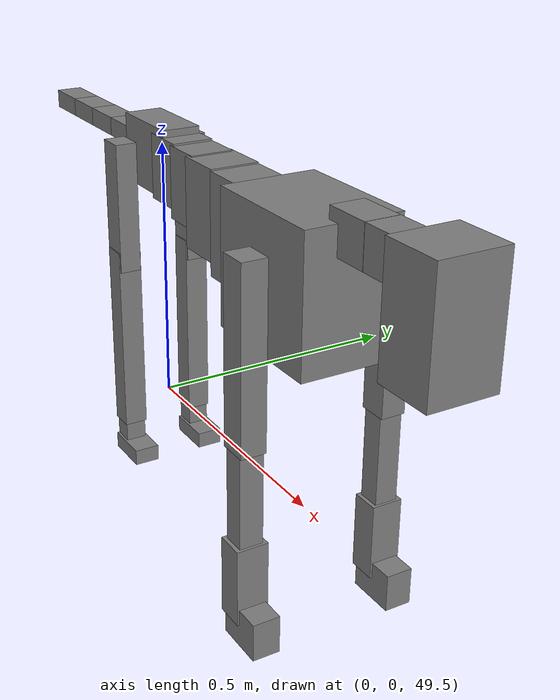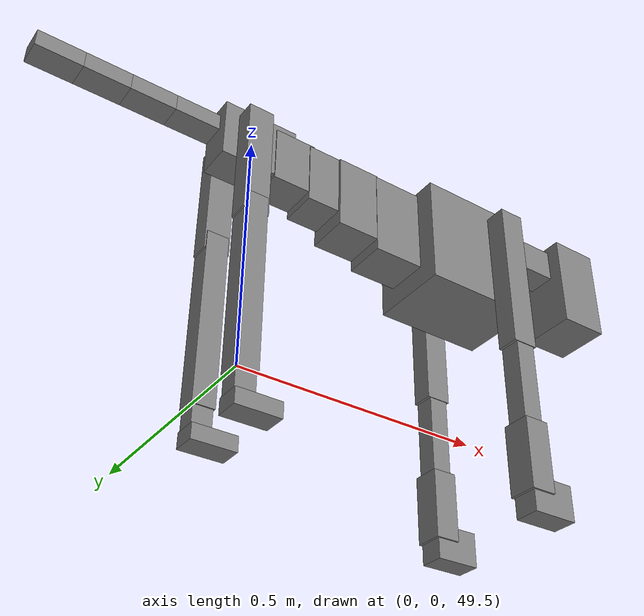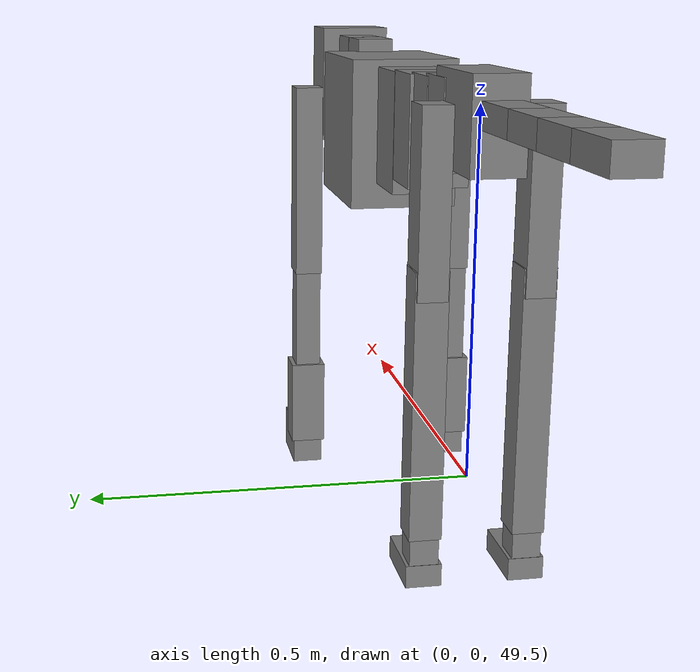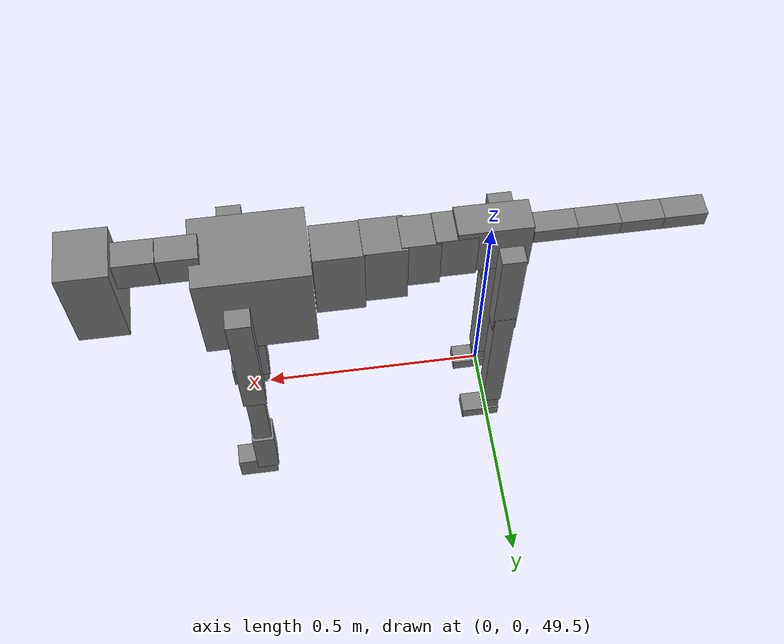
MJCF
<mujoco model="dog">

    <default>
        <joint armature="0.02" stiffness="1" damping="0.2" limited="true"/>
        <geom condim="3" friction="1 0.05 0.05" margin="0.01"/>
        <motor ctrllimited="true" ctrlrange="-1.0 1.0" forcelimited="true" gear="50"/>
    </default>

    <compiler inertiafromgeom="true" angle="radian"/>

    <option timestep="0.016" iterations="50" tolerance="1e-10" solver="Newton" jacobian="dense" cone="pyramidal"/>

    <size nconmax="20000" njmax="60000" nstack="5000000"/>
    <visual>
        <map force="0.1" zfar="30"/>
        <rgba haze="0.15 0.25 0.35 1"/>
        <quality shadowsize="2048"/>
        <global offwidth="800" offheight="800"/>
    </visual>

    <asset>
        <texture type="skybox" builtin="gradient" rgb1="0.3 0.5 0.7" rgb2="0 0 0" width="512" height="512"/>
        <texture name="texplane" type="2d" builtin="checker" rgb1=".2 .3 .4" rgb2=".1 0.15 0.2" width="512" height="512"
                 mark="cross" markrgb=".8 .8 .8"/>
        <texture name="texgeom" type="cube" builtin="flat" mark="cross" width="127" height="1278" rgb1="0.8 0.6 0.4"
                 rgb2="0.8 0.6 0.4" markrgb="1 1 1" random="0.01"/>

        <material name="matplane" reflectance="0.3" texture="texplane" texrepeat="1 1" texuniform="true"/>
        <material name="matgeom" texture="texgeom" texuniform="true" rgba="0.8 0.6 .4 1"/>
    </asset>

    <worldbody>
        <geom name="floor" pos="0 0 0" size="0 0 .25" type="plane" material="matplane" condim="3"/>

        <light directional="false" diffuse=".2 .2 .2" specular="0 0 0" pos="0 0 5" dir="0 0 -1" castshadow="false"/>
        <light mode="targetbodycom" target="torso" directional="false" diffuse=".8 .8 .8" specular="0.3 0.3 0.3"
               pos="0 0 4.0" dir="0 0 -1"/>

        <body name="root" pos="0 0 50">
            <freejoint name="root_1"/>
            <geom type="box" pos="0 0 -0.02" size="0.0774  0.0358  0.063" density="2030"/>

            <body name="spine1" pos="0.054 0 0">
                <joint name="spine1_y" axis="0 1 0" range="0 0.7" limited="true"/>
                <geom type="box" pos="0.02375 0 -0.03" size="0.04375  0.0375  0.05985" density="2030"/>

                <body name="spine2" pos="0.0612 0 0">
                    <joint name="spine2_y" axis="0 1 0" range="-0.15 0.15" limited="true"/>
                    <geom type="box" pos="0.03555  0  -0.04" size="0.04055  0.039  0.06615" density="2030"/>

                    <body name="spine3" pos="0.0730 0 0">
                        <joint name="spine3_y" axis="0 1 0" range="-0.15 0.15" limited="true"/>
                        <geom type="box" pos="0.03555  0  -0.057" size="0.04555  0.0445  0.081" density="2030"/>

                        <body name="spine4" pos="0.0780 0 0">
                            <joint name="spine4_y" axis="0 1 0" range="-0.15 0.15" limited="true"/>
                            <geom type="box" pos="0.05265  0  -0.07" size="0.05265  0.045  0.09135" density="2030"/>

                            <body name="torso" pos="0.1082 0 0">
                                <joint name="torso_y" axis="0 1 0" range="-0.15 0.15" limited="true"/>
                                <geom type="box" pos="0.11925  0  -0.085" size="0.11925  0.085  0.11745"
                                      density="2030"/>

                                <body name="neck1" pos="0.2160  0   0.0180">
                                    <joint name="neck1_y" axis="0 1 0" range="-1.2  -1" limited="true"/>
                                    <geom type="box" pos="0.0423  0  0" size="0.0423  0.03  0.036" density="2325"/>

                                    <body name="neck2" pos="0.0853  0  0">
                                        <joint name="neck2_y" axis="0 1 0" range="0.1  0" limited="true"/>
                                        <geom type="box" pos="0.0423  0  0" size="0.0423  0.03  0.036" density="2325"/>

                                        <body name="head" pos="0.0853  0  0">
                                            <joint name="head_y" axis="0 1 0" range="-0.3  -0.2" limited="true"/>
                                            <geom type="box" pos="0.0531  0  -0.055" size="0.0531  0.06  0.1044"
                                                  density="4030"/>

                                        </body>
                                    </body>
                                </body>

                                <body name="front_shoulder" pos="0.156  0   -0.0480">
                                    <joint name="front_shoulder_y" axis="0 1 0" range="-1 1.5" limited="true"/>
                                    <geom type="box" pos="0 0.13 -0.1322" size="0.0261  0.0223  0.1589" density="1158"/>
                                    <geom type="box" pos="0 -0.13 -0.1322" size="0.0261  0.0223  0.1589"
                                          density="1158"/>

                                    <body name="front_elbow" pos="0  0  -0.2645">
                                        <joint name="front_elbow_y" axis="0 1 0" range="-2 0" limited="true"/>
                                        <geom type="box" pos="0 0.13 -0.1025" size="0.0204  0.0209  0.1025"
                                              density="1081"/>
                                        <geom type="box" pos="0 -0.13 -0.1025" size="0.0204  0.0209  0.1025"
                                              density="1081"/>

                                        <body name="front_wrist" pos="0  0  -0.2049">
                                            <joint name="front_wrist_y" axis="0 1 0" range="-0.2 0" limited="true"/>
                                            <geom type="box" pos="0 0.13 -0.0569" size="0.0255  0.0283  0.0701"
                                                  density="1664"/>
                                            <geom type="box" pos="0 -0.13 -0.0569" size="0.0255  0.0283  0.0701"
                                                  density="1664"/>

                                            <body name="front_finger_end" pos="0  0  -0.1139">
                                                <joint name="front_finger_y" axis="0 1 0" range="-0.4 1"
                                                       limited="true"/>
                                                <geom type="box" pos="0.0246  0.13  -0.0195"
                                                      size="0.0450  0.0246  0.0345" density="1515"/>
                                                <geom type="box" pos="0.0246  -0.13  -0.0195"
                                                      size="0.0450  0.0246  0.0345" density="1515"/>

                                            </body>

                                        </body>
                                    </body>
                                </body>

                            </body>
                        </body>
                    </body>
                </body>
            </body>

            <body name="back_hip" pos="-0.03 0 -0.018">
                <joint name="back_hip_y" axis="0 1 0" range="-1.5 0.3" limited="true"/>
                <geom type="box" pos="0 0.07 -0.0997" size="0.0255  0.0200  0.1225" density="1154"/>
                <geom type="box" pos="0 -0.07 -0.0997" size="0.0255  0.0200  0.1225" density="1154"/>

                <body name="back_knee" pos="0  0  -0.1995">
                    <joint name="back_knee_y" axis="0 1 0" range="0 2.8" limited="true"/>
                    <geom type="box" pos="0 0.07 -0.1650" size="0.0223  0.0219  0.1806" density="1227"/>
                    <geom type="box" pos="0 -0.07 -0.1650" size="0.0223  0.0219  0.1806" density="1227"/>

                    <body name="back_ankle" pos="0  0  -0.3301">
                        <joint name="back_ankle_y" axis="0 1 0" range="-2.2 0" limited="true"/>
                        <geom type="box" pos="0 0.07 -0.0335" size="0.0195  0.0195  0.0448" density="1284"/>
                        <geom type="box" pos="0 -0.07 -0.0335" size="0.0195  0.0195  0.0448" density="1284"/>

                        <body name="back_toe_end" pos="0  0  -0.0671">
                            <joint name="back_toe_y" axis="0 1 0" range="-0.4 1" limited="true"/>
                            <geom type="box" pos="0.0241  0.07  -0.0004" size="0.0441  0.0241  0.0154" density="1515"/>
                            <geom type="box" pos="0.0241  -0.07  -0.0004" size="0.0441  0.0241  0.0154" density="1515"/>

                        </body>
                    </body>
                </body>
            </body>

            <body name="tail1" pos="-0.074 0 -0.006">
                <joint name="tail1_y" axis="0 1 0" range="-0.2 0.2" limited="true"/>
                <geom type="box" pos="-0.0536  0  0" size="0.045  0.025  0.0175" density="1587"/>

                <body name="tail2" pos="-0.09 0 0">
                    <joint name="tail2_y" axis="0 1 0" range="-0.2 0.2" limited="true"/>
                    <geom type="box" pos="-0.0536  0  0" size="0.045  0.025  0.0175" density="1587"/>

                    <body name="tail3" pos="-0.09 0 0">
                        <joint name="tail3_y" axis="0 1 0" range="-0.2 0.2" limited="true"/>
                        <geom type="box" pos="-0.0536  0  0" size="0.045  0.025  0.0175" density="1587"/>

                        <body name="tail4" pos="-0.09 0 0">
                            <joint name="tail4_y" axis="0 1 0" range="-0.2 0.2" limited="true"/>
                            <geom type="box" pos="-0.0536  0  0" size="0.045  0.025  0.0175" density="1587"/>

                        </body>
                    </body>
                </body>
            </body>
        </body>
    </worldbody>

    <actuator>
        <motor joint="spine1_y" forcerange="-150 150     "/>
        <motor joint="spine2_y" forcerange="-150 150     "/>
        <motor joint="spine3_y" forcerange="-150 150     "/>
        <motor joint="spine4_y" forcerange="-150 150     "/>
        <motor joint="torso_y" forcerange="-150 150     "/>
        <motor joint="neck1_y" forcerange="-100 100       "/>
        <motor joint="neck2_y" forcerange="-100 100       "/>
        <motor joint="head_y" forcerange="-150 150       "/>
        <motor joint="front_shoulder_y" forcerange="-124.22 124.48"/>
        <motor joint="front_elbow_y" forcerange="-124.98 127.05"/>
        <motor joint="front_wrist_y" forcerange="-83.55 142.78"/>
        <motor joint="front_finger_y" forcerange="-67.63 23.33"/>
        <motor joint="back_hip_y" forcerange="-225.95 241.01"/>
        <motor joint="back_knee_y" forcerange="-311.51 207.53"/>
        <motor joint="back_angle_y" forcerange="-60.52 151.92"/>
        <motor joint="back_toe_y" forcerange="-38.46 74.17"/>
        <motor joint="tail1_y" forcerange="-50 50     "/>
        <motor joint="tail2_y" forcerange="-50 50     "/>
        <motor joint="tail3_y" forcerange="-50 50     "/>
        <motor joint="tail4_y" forcerange="-50 50     "/>
    </actuator>
</mujoco>
